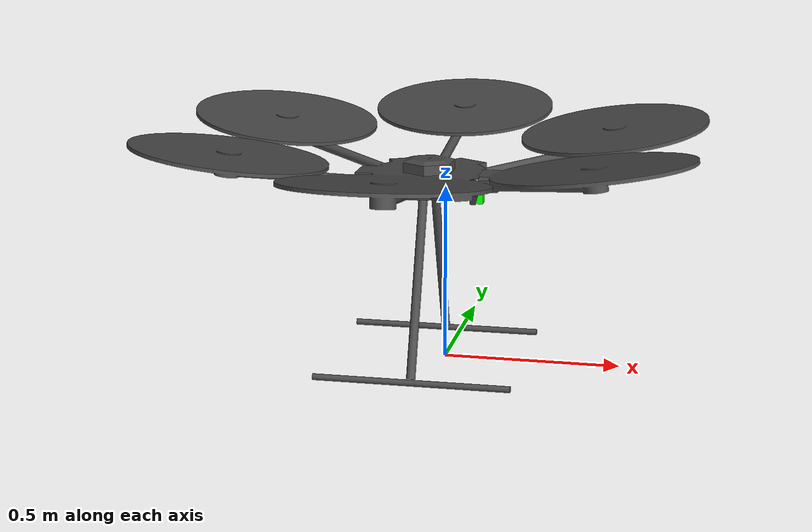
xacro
<?xml version="1.0"?>

<robot name="m600_drone" xmlns:xacro="http://www.ros.org/wiki/xacro">

  <xacro:arg name="drone_name" default="m600" />

  <xacro:include filename="$(find dji_drone_description)/urdf/_dji_m600.urdf.xacro" />

  <xacro:dji_m600  name="$(arg drone_name)">
  </xacro:dji_m600>

</robot>

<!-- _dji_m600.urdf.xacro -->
<!--Written by Tareq Aziz ALQutami (tareqaziz2010@gmail.com) -->

<robot name="dji_m600" xmlns:xacro="http://www.ros.org/wiki/xacro">

  <xacro:macro name="dji_m600" params="name:=m600">

    <!-- Drone base link. The name of the link is variable to allow spawning more than one drone -->
    <link name="${name}_base_link">
      <inertial>
        <mass value="10.0" />
        <inertia ixx="0.01152" ixy="0.0" ixz="0.0" iyy="0.01152" iyz="0.0" izz="0.0218" />
      </inertial>
      <visual>
        <origin xyz="0 0 0.005" rpy="0 0 0" />
        <geometry>
          <mesh filename="package://dji_drone_description/meshes/dji_m600.dae"/>
        </geometry>
      </visual>
      <collision>
        <origin xyz="0 0 0.005" rpy="0 0 0" />
        <geometry>
          <mesh filename="package://dji_drone_description/meshes/dji_m600.dae"/>
        </geometry>
      </collision>
    </link>

    <!-- Led indication link to identify front of the drone -->
    <link name="led_link">
      <inertial>
        <mass value="0.0010" />
        <inertia ixx="0.0001" ixy="0" ixz="0" iyy="0.0001" iyz="0" izz="0.0001" />
      </inertial>
      <visual>
        <origin xyz="0.1 -0.038 0.48" rpy="0 0 0" />    <!--(x,y,z)=(red,green,blue) in GAZEBO  -->
        <geometry>
           <box size="0.030 0.030 0.030" />
        </geometry>
        <material name="green">
            <color rgba="0 1 0 1"/>
        </material>
      </visual>
      <collision>
        <origin xyz="0.1 -0.038 0.48" rpy="0 0 0" />
        <geometry>
          <box size="0.030 0.030 0.030" />
        </geometry>
      </collision>
    </link>
    <joint name='led_joint' type='fixed'>
      <origin xyz="0 0 0" rpy="0 0 0"/>
      <parent link="${name}_base_link"/>
      <child link="led_link"/>
    </joint>

    <!--Gazebo elements -->
    <!-- reference to gazebo colors -->
    <gazebo reference="led_link">
      <material>Gazebo/Green</material>
    </gazebo>

    <!-- This plugin publishes drone pose with respect to ground in topic ground_truth/state,
          The topic ground_truth/state can then be published to tf manually or using message_to_tf package -->
    <gazebo>
      <plugin name="m600_groundtruth_sim" filename="libgazebo_ros_p3d.so">
        <updateRate>50.0</updateRate>
        <bodyName>${name}_base_link</bodyName>
        <topicName>ground_truth/state</topicName>
        <gaussianNoise>0.0</gaussianNoise>
        <frameName>world</frameName>
      </plugin>
    </gazebo>

  </xacro:macro>

</robot>
